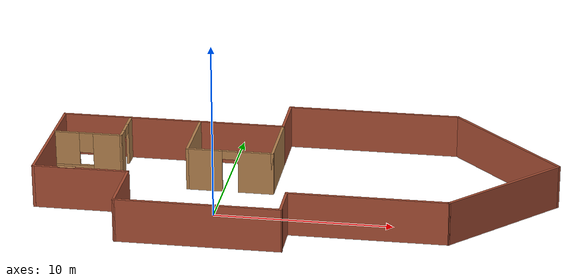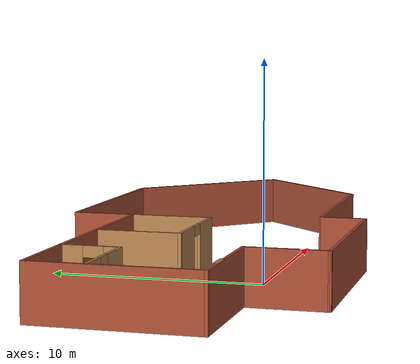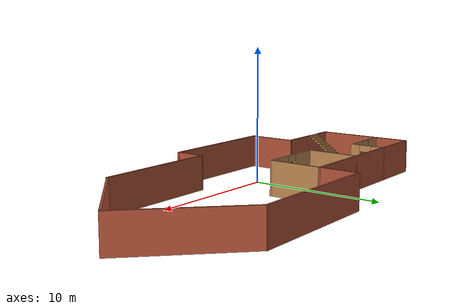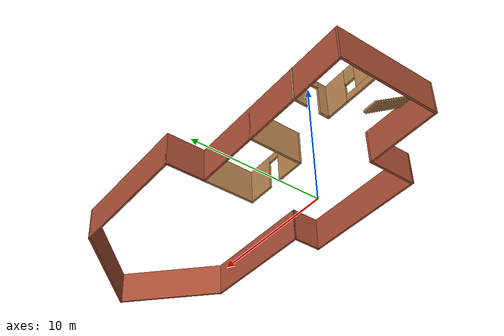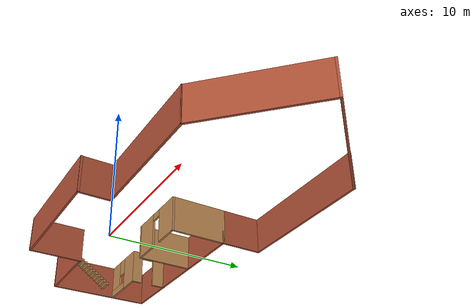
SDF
<?xml version='1.0'?>
<sdf version='1.7'>
  <model name='walls_rooms_stair'>
    <pose>4.33574 3.04766 0 0 -0 0</pose>
    <link name='Stairs_0'>
      <visual name='Stairs_0_Visual_0'>
        <pose>-12.5285 0.00902 0.083333 0 -0 0</pose>
        <geometry>
          <box>
            <size>1 0.233333 0.166667</size>
          </box>
        </geometry>
        <material>
          <script>
            <uri>file://media/materials/scripts/gazebo.material</uri>
            <name>Gazebo/Wood</name>
          </script>
          <ambient>1 1 1 1</ambient>
        </material>
        <meta>
          <layer>0</layer>
        </meta>
      </visual>
      <collision name='Stairs_0_Collision_0'>
        <geometry>
          <box>
            <size>1 0.233333 0.166667</size>
          </box>
        </geometry>
        <pose>-12.5285 0.00902 0.083333 0 -0 0</pose>
      </collision>
      <visual name='Stairs_0_Visual_1'>
        <pose>-12.5285 -0.224313 0.25 0 -0 0</pose>
        <geometry>
          <box>
            <size>1 0.233333 0.166667</size>
          </box>
        </geometry>
        <material>
          <script>
            <uri>file://media/materials/scripts/gazebo.material</uri>
            <name>Gazebo/Wood</name>
          </script>
          <ambient>1 1 1 1</ambient>
        </material>
        <meta>
          <layer>0</layer>
        </meta>
      </visual>
      <collision name='Stairs_0_Collision_1'>
        <geometry>
          <box>
            <size>1 0.233333 0.166667</size>
          </box>
        </geometry>
        <pose>-12.5285 -0.224313 0.25 0 -0 0</pose>
      </collision>
      <visual name='Stairs_0_Visual_2'>
        <pose>-12.5285 -0.457646 0.416667 0 -0 0</pose>
        <geometry>
          <box>
            <size>1 0.233333 0.166667</size>
          </box>
        </geometry>
        <material>
          <script>
            <uri>file://media/materials/scripts/gazebo.material</uri>
            <name>Gazebo/Wood</name>
          </script>
          <ambient>1 1 1 1</ambient>
        </material>
        <meta>
          <layer>0</layer>
        </meta>
      </visual>
      <collision name='Stairs_0_Collision_2'>
        <geometry>
          <box>
            <size>1 0.233333 0.166667</size>
          </box>
        </geometry>
        <pose>-12.5285 -0.457646 0.416667 0 -0 0</pose>
      </collision>
      <visual name='Stairs_0_Visual_3'>
        <pose>-12.5285 -0.69098 0.583333 0 -0 0</pose>
        <geometry>
          <box>
            <size>1 0.233333 0.166667</size>
          </box>
        </geometry>
        <material>
          <script>
            <uri>file://media/materials/scripts/gazebo.material</uri>
            <name>Gazebo/Wood</name>
          </script>
          <ambient>1 1 1 1</ambient>
        </material>
        <meta>
          <layer>0</layer>
        </meta>
      </visual>
      <collision name='Stairs_0_Collision_3'>
        <geometry>
          <box>
            <size>1 0.233333 0.166667</size>
          </box>
        </geometry>
        <pose>-12.5285 -0.69098 0.583333 0 -0 0</pose>
      </collision>
      <visual name='Stairs_0_Visual_4'>
        <pose>-12.5285 -0.924313 0.75 0 -0 0</pose>
        <geometry>
          <box>
            <size>1 0.233333 0.166667</size>
          </box>
        </geometry>
        <material>
          <script>
            <uri>file://media/materials/scripts/gazebo.material</uri>
            <name>Gazebo/Wood</name>
          </script>
          <ambient>1 1 1 1</ambient>
        </material>
        <meta>
          <layer>0</layer>
        </meta>
      </visual>
      <collision name='Stairs_0_Collision_4'>
        <geometry>
          <box>
            <size>1 0.233333 0.166667</size>
          </box>
        </geometry>
        <pose>-12.5285 -0.924313 0.75 0 -0 0</pose>
      </collision>
      <visual name='Stairs_0_Visual_5'>
        <pose>-12.5285 -1.15765 0.916667 0 -0 0</pose>
        <geometry>
          <box>
            <size>1 0.233333 0.166667</size>
          </box>
        </geometry>
        <material>
          <script>
            <uri>file://media/materials/scripts/gazebo.material</uri>
            <name>Gazebo/Wood</name>
          </script>
          <ambient>1 1 1 1</ambient>
        </material>
        <meta>
          <layer>0</layer>
        </meta>
      </visual>
      <collision name='Stairs_0_Collision_5'>
        <geometry>
          <box>
            <size>1 0.233333 0.166667</size>
          </box>
        </geometry>
        <pose>-12.5285 -1.15765 0.916667 0 -0 0</pose>
      </collision>
      <visual name='Stairs_0_Visual_6'>
        <pose>-12.5285 -1.39098 1.08333 0 -0 0</pose>
        <geometry>
          <box>
            <size>1 0.233333 0.166667</size>
          </box>
        </geometry>
        <material>
          <script>
            <uri>file://media/materials/scripts/gazebo.material</uri>
            <name>Gazebo/Wood</name>
          </script>
          <ambient>1 1 1 1</ambient>
        </material>
        <meta>
          <layer>0</layer>
        </meta>
      </visual>
      <collision name='Stairs_0_Collision_6'>
        <geometry>
          <box>
            <size>1 0.233333 0.166667</size>
          </box>
        </geometry>
        <pose>-12.5285 -1.39098 1.08333 0 -0 0</pose>
      </collision>
      <visual name='Stairs_0_Visual_7'>
        <pose>-12.5285 -1.62431 1.25 0 -0 0</pose>
        <geometry>
          <box>
            <size>1 0.233333 0.166667</size>
          </box>
        </geometry>
        <material>
          <script>
            <uri>file://media/materials/scripts/gazebo.material</uri>
            <name>Gazebo/Wood</name>
          </script>
          <ambient>1 1 1 1</ambient>
        </material>
        <meta>
          <layer>0</layer>
        </meta>
      </visual>
      <collision name='Stairs_0_Collision_7'>
        <geometry>
          <box>
            <size>1 0.233333 0.166667</size>
          </box>
        </geometry>
        <pose>-12.5285 -1.62431 1.25 0 -0 0</pose>
      </collision>
      <visual name='Stairs_0_Visual_8'>
        <pose>-12.5285 -1.85765 1.41667 0 -0 0</pose>
        <geometry>
          <box>
            <size>1 0.233333 0.166667</size>
          </box>
        </geometry>
        <material>
          <script>
            <uri>file://media/materials/scripts/gazebo.material</uri>
            <name>Gazebo/Wood</name>
          </script>
          <ambient>1 1 1 1</ambient>
        </material>
        <meta>
          <layer>0</layer>
        </meta>
      </visual>
      <collision name='Stairs_0_Collision_8'>
        <geometry>
          <box>
            <size>1 0.233333 0.166667</size>
          </box>
        </geometry>
        <pose>-12.5285 -1.85765 1.41667 0 -0 0</pose>
      </collision>
      <visual name='Stairs_0_Visual_9'>
        <pose>-12.5285 -2.09098 1.58333 0 -0 0</pose>
        <geometry>
          <box>
            <size>1 0.233333 0.166667</size>
          </box>
        </geometry>
        <material>
          <script>
            <uri>file://media/materials/scripts/gazebo.material</uri>
            <name>Gazebo/Wood</name>
          </script>
          <ambient>1 1 1 1</ambient>
        </material>
        <meta>
          <layer>0</layer>
        </meta>
      </visual>
      <collision name='Stairs_0_Collision_9'>
        <geometry>
          <box>
            <size>1 0.233333 0.166667</size>
          </box>
        </geometry>
        <pose>-12.5285 -2.09098 1.58333 0 -0 0</pose>
      </collision>
      <visual name='Stairs_0_Visual_10'>
        <pose>-12.5285 -2.32431 1.75 0 -0 0</pose>
        <geometry>
          <box>
            <size>1 0.233333 0.166667</size>
          </box>
        </geometry>
        <material>
          <script>
            <uri>file://media/materials/scripts/gazebo.material</uri>
            <name>Gazebo/Wood</name>
          </script>
          <ambient>1 1 1 1</ambient>
        </material>
        <meta>
          <layer>0</layer>
        </meta>
      </visual>
      <collision name='Stairs_0_Collision_10'>
        <geometry>
          <box>
            <size>1 0.233333 0.166667</size>
          </box>
        </geometry>
        <pose>-12.5285 -2.32431 1.75 0 -0 0</pose>
      </collision>
      <visual name='Stairs_0_Visual_11'>
        <pose>-12.5285 -2.55765 1.91667 0 -0 0</pose>
        <geometry>
          <box>
            <size>1 0.233333 0.166667</size>
          </box>
        </geometry>
        <material>
          <script>
            <uri>file://media/materials/scripts/gazebo.material</uri>
            <name>Gazebo/Wood</name>
          </script>
          <ambient>1 1 1 1</ambient>
        </material>
        <meta>
          <layer>0</layer>
        </meta>
      </visual>
      <collision name='Stairs_0_Collision_11'>
        <geometry>
          <box>
            <size>1 0.233333 0.166667</size>
          </box>
        </geometry>
        <pose>-12.5285 -2.55765 1.91667 0 -0 0</pose>
      </collision>
      <visual name='Stairs_0_Visual_12'>
        <pose>-12.5285 -2.79098 2.08333 0 -0 0</pose>
        <geometry>
          <box>
            <size>1 0.233333 0.166667</size>
          </box>
        </geometry>
        <material>
          <script>
            <uri>file://media/materials/scripts/gazebo.material</uri>
            <name>Gazebo/Wood</name>
          </script>
          <ambient>1 1 1 1</ambient>
        </material>
        <meta>
          <layer>0</layer>
        </meta>
      </visual>
      <collision name='Stairs_0_Collision_12'>
        <geometry>
          <box>
            <size>1 0.233333 0.166667</size>
          </box>
        </geometry>
        <pose>-12.5285 -2.79098 2.08333 0 -0 0</pose>
      </collision>
      <visual name='Stairs_0_Visual_13'>
        <pose>-12.5285 -3.02431 2.25 0 -0 0</pose>
        <geometry>
          <box>
            <size>1 0.233333 0.166667</size>
          </box>
        </geometry>
        <material>
          <script>
            <uri>file://media/materials/scripts/gazebo.material</uri>
            <name>Gazebo/Wood</name>
          </script>
          <ambient>1 1 1 1</ambient>
        </material>
        <meta>
          <layer>0</layer>
        </meta>
      </visual>
      <collision name='Stairs_0_Collision_13'>
        <geometry>
          <box>
            <size>1 0.233333 0.166667</size>
          </box>
        </geometry>
        <pose>-12.5285 -3.02431 2.25 0 -0 0</pose>
      </collision>
      <visual name='Stairs_0_Visual_14'>
        <pose>-12.5285 -3.25765 2.41667 0 -0 0</pose>
        <geometry>
          <box>
            <size>1 0.233333 0.166667</size>
          </box>
        </geometry>
        <material>
          <script>
            <uri>file://media/materials/scripts/gazebo.material</uri>
            <name>Gazebo/Wood</name>
          </script>
          <ambient>1 1 1 1</ambient>
        </material>
        <meta>
          <layer>0</layer>
        </meta>
      </visual>
      <collision name='Stairs_0_Collision_14'>
        <geometry>
          <box>
            <size>1 0.233333 0.166667</size>
          </box>
        </geometry>
        <pose>-12.5285 -3.25765 2.41667 0 -0 0</pose>
      </collision>
    </link>
    <link name='Wall_10'>
      <collision name='Wall_10_Collision'>
        <geometry>
          <box>
            <size>7.5 0.15 2.5</size>
          </box>
        </geometry>
        <pose>0 0 1.25 0 -0 0</pose>
      </collision>
      <visual name='Wall_10_Visual'>
        <pose>0 0 1.25 0 -0 0</pose>
        <geometry>
          <box>
            <size>7.5 0.15 2.5</size>
          </box>
        </geometry>
        <material>
          <script>
            <uri>file://media/materials/scripts/gazebo.material</uri>
            <name>Gazebo/Bricks</name>
          </script>
          <ambient>1 1 1 1</ambient>
        </material>
        <meta>
          <layer>0</layer>
        </meta>
      </visual>
      <pose>-14.4061 0.359592 0 0 -0 1.5708</pose>
    </link>
    <link name='Wall_11'>
      <collision name='Wall_11_Collision'>
        <geometry>
          <box>
            <size>13 0.15 2.5</size>
          </box>
        </geometry>
        <pose>0 0 1.25 0 -0 0</pose>
      </collision>
      <visual name='Wall_11_Visual'>
        <pose>0 0 1.25 0 -0 0</pose>
        <geometry>
          <box>
            <size>13 0.15 2.5</size>
          </box>
        </geometry>
        <material>
          <script>
            <uri>file://media/materials/scripts/gazebo.material</uri>
            <name>Gazebo/Bricks</name>
          </script>
          <ambient>1 1 1 1</ambient>
        </material>
        <meta>
          <layer>0</layer>
        </meta>
      </visual>
      <pose>-7.98109 4.03459 0 0 -0 0</pose>
    </link>
    <link name='Wall_12'>
      <collision name='Wall_12_Collision'>
        <geometry>
          <box>
            <size>3 0.15 2.5</size>
          </box>
        </geometry>
        <pose>0 0 1.25 0 -0 0</pose>
      </collision>
      <visual name='Wall_12_Visual'>
        <pose>0 0 1.25 0 -0 0</pose>
        <geometry>
          <box>
            <size>3 0.15 2.5</size>
          </box>
        </geometry>
        <material>
          <script>
            <uri>file://media/materials/scripts/gazebo.material</uri>
            <name>Gazebo/Bricks</name>
          </script>
          <ambient>1 1 1 1</ambient>
        </material>
        <meta>
          <layer>0</layer>
        </meta>
      </visual>
      <pose>-1.55609 5.45959 0 0 -0 1.5708</pose>
    </link>
    <link name='Wall_13'>
      <collision name='Wall_13_Collision'>
        <geometry>
          <box>
            <size>10 0.15 2.5</size>
          </box>
        </geometry>
        <pose>0 0 1.25 0 -0 0</pose>
      </collision>
      <visual name='Wall_13_Visual'>
        <pose>0 0 1.25 0 -0 0</pose>
        <geometry>
          <box>
            <size>10 0.15 2.5</size>
          </box>
        </geometry>
        <material>
          <script>
            <uri>file://media/materials/scripts/gazebo.material</uri>
            <name>Gazebo/Bricks</name>
          </script>
          <ambient>1 1 1 1</ambient>
        </material>
        <meta>
          <layer>0</layer>
        </meta>
      </visual>
      <pose>3.36891 6.88459 0 0 -0 0</pose>
    </link>
    <link name='Wall_14'>
      <collision name='Wall_14_Collision'>
        <geometry>
          <box>
            <size>8.75 0.15 2.5</size>
          </box>
        </geometry>
        <pose>0 0 1.25 0 -0 0</pose>
      </collision>
      <visual name='Wall_14_Visual'>
        <pose>0 0 1.25 0 -0 0</pose>
        <geometry>
          <box>
            <size>8.75 0.15 2.5</size>
          </box>
        </geometry>
        <material>
          <script>
            <uri>file://media/materials/scripts/gazebo.material</uri>
            <name>Gazebo/Bricks</name>
          </script>
          <ambient>1 1 1 1</ambient>
        </material>
        <meta>
          <layer>0</layer>
        </meta>
      </visual>
      <pose>11.3345 3.84403 0 0 -0 -0.785398</pose>
    </link>
    <link name='Wall_15'>
      <collision name='Wall_15_Collision'>
        <geometry>
          <box>
            <size>8 0.15 2.5</size>
          </box>
        </geometry>
        <pose>0 0 1.25 0 -0 0</pose>
      </collision>
      <visual name='Wall_15_Visual'>
        <pose>0 0 1.25 0 -0 0</pose>
        <geometry>
          <box>
            <size>8 0.15 2.5</size>
          </box>
        </geometry>
        <material>
          <script>
            <uri>file://media/materials/scripts/gazebo.material</uri>
            <name>Gazebo/Bricks</name>
          </script>
          <ambient>1 1 1 1</ambient>
        </material>
        <meta>
          <layer>0</layer>
        </meta>
      </visual>
      <pose>11.5996 -1.97192 0 0 -0 -2.35619</pose>
    </link>
    <link name='Wall_16'>
      <collision name='Wall_16_Collision'>
        <geometry>
          <box>
            <size>8.961 0.15 2.5</size>
          </box>
        </geometry>
        <pose>0 0 1.25 0 -0 0</pose>
      </collision>
      <visual name='Wall_16_Visual'>
        <pose>0 0 1.25 0 -0 0</pose>
        <geometry>
          <box>
            <size>8.961 0.15 2.5</size>
          </box>
        </geometry>
        <material>
          <script>
            <uri>file://media/materials/scripts/gazebo.material</uri>
            <name>Gazebo/Bricks</name>
          </script>
          <ambient>1 1 1 1</ambient>
        </material>
        <meta>
          <layer>0</layer>
        </meta>
      </visual>
      <pose>4.41878 -4.76607 0 0 -0 -3.13734</pose>
    </link>
    <link name='Wall_17'>
      <collision name='Wall_17_Collision'>
        <geometry>
          <box>
            <size>2.25 0.15 2.5</size>
          </box>
        </geometry>
        <pose>0 0 1.25 0 -0 0</pose>
      </collision>
      <visual name='Wall_17_Visual'>
        <pose>0 0 1.25 0 -0 0</pose>
        <geometry>
          <box>
            <size>2.25 0.15 2.5</size>
          </box>
        </geometry>
        <material>
          <script>
            <uri>file://media/materials/scripts/gazebo.material</uri>
            <name>Gazebo/Bricks</name>
          </script>
          <ambient>1 1 1 1</ambient>
        </material>
        <meta>
          <layer>0</layer>
        </meta>
      </visual>
      <pose>0.013317 -5.83482 0 0 -0 -1.5708</pose>
    </link>
    <link name='Wall_19'>
      <collision name='Wall_19_Collision'>
        <geometry>
          <box>
            <size>4 0.15 2.5</size>
          </box>
        </geometry>
        <pose>0 0 1.25 0 -0 0</pose>
      </collision>
      <visual name='Wall_19_Visual'>
        <pose>0 0 1.25 0 -0 0</pose>
        <geometry>
          <box>
            <size>4 0.15 2.5</size>
          </box>
        </geometry>
        <material>
          <script>
            <uri>file://media/materials/scripts/gazebo.material</uri>
            <name>Gazebo/Wood</name>
          </script>
          <ambient>1 1 1 1</ambient>
        </material>
        <meta>
          <layer>0</layer>
        </meta>
      </visual>
      <pose>-1.55609 2.10959 0 0 -0 -1.5708</pose>
    </link>
    <link name='Wall_20'>
      <pose>-3.98109 0.184592 0 0 -0 3.14159</pose>
      <visual name='Wall_20_Visual_0'>
        <pose>-1.48551 0 1.25 0 -0 0</pose>
        <geometry>
          <box>
            <size>2.02898 0.15 2.5</size>
          </box>
        </geometry>
        <material>
          <script>
            <uri>file://media/materials/scripts/gazebo.material</uri>
            <name>Gazebo/Wood</name>
          </script>
          <ambient>1 1 1 1</ambient>
        </material>
        <meta>
          <layer>0</layer>
        </meta>
      </visual>
      <collision name='Wall_20_Collision_0'>
        <geometry>
          <box>
            <size>2.02898 0.15 2.5</size>
          </box>
        </geometry>
        <pose>-1.48551 0 1.25 0 -0 0</pose>
      </collision>
      <visual name='Wall_20_Visual_1'>
        <pose>1.46449 0 1.25 0 -0 0</pose>
        <geometry>
          <box>
            <size>2.07102 0.15 2.5</size>
          </box>
        </geometry>
        <material>
          <script>
            <uri>file://media/materials/scripts/gazebo.material</uri>
            <name>Gazebo/Wood</name>
          </script>
          <ambient>1 1 1 1</ambient>
        </material>
        <meta>
          <layer>0</layer>
        </meta>
      </visual>
      <collision name='Wall_20_Collision_1'>
        <geometry>
          <box>
            <size>2.07102 0.15 2.5</size>
          </box>
        </geometry>
        <pose>1.46449 0 1.25 0 -0 0</pose>
      </collision>
      <visual name='Wall_20_Visual_2'>
        <pose>-0.021019 0 2.25 0 -0 0</pose>
        <geometry>
          <box>
            <size>0.9 0.15 0.5</size>
          </box>
        </geometry>
        <material>
          <script>
            <uri>file://media/materials/scripts/gazebo.material</uri>
            <name>Gazebo/Wood</name>
          </script>
          <ambient>1 1 1 1</ambient>
        </material>
        <meta>
          <layer>0</layer>
        </meta>
      </visual>
      <collision name='Wall_20_Collision_2'>
        <geometry>
          <box>
            <size>0.9 0.15 0.5</size>
          </box>
        </geometry>
        <pose>-0.021019 0 2.25 0 -0 0</pose>
      </collision>
    </link>
    <link name='Wall_21'>
      <collision name='Wall_21_Collision'>
        <geometry>
          <box>
            <size>4 0.15 2.5</size>
          </box>
        </geometry>
        <pose>0 0 1.25 0 -0 0</pose>
      </collision>
      <visual name='Wall_21_Visual'>
        <pose>0 0 1.25 0 -0 0</pose>
        <geometry>
          <box>
            <size>4 0.15 2.5</size>
          </box>
        </geometry>
        <material>
          <script>
            <uri>file://media/materials/scripts/gazebo.material</uri>
            <name>Gazebo/Wood</name>
          </script>
          <ambient>1 1 1 1</ambient>
        </material>
        <meta>
          <layer>0</layer>
        </meta>
      </visual>
      <pose>-6.40609 2.10959 0 0 -0 1.5708</pose>
    </link>
    <link name='Wall_23'>
      <pose>-10.497 2.75306 0 0 -0 1.5708</pose>
      <visual name='Wall_23_Visual_0'>
        <pose>-0.989263 0 1.25 0 -0 0</pose>
        <geometry>
          <box>
            <size>0.771474 0.15 2.5</size>
          </box>
        </geometry>
        <material>
          <script>
            <uri>file://media/materials/scripts/gazebo.material</uri>
            <name>Gazebo/Wood</name>
          </script>
          <ambient>1 1 1 1</ambient>
        </material>
        <meta>
          <layer>0</layer>
        </meta>
      </visual>
      <collision name='Wall_23_Collision_0'>
        <geometry>
          <box>
            <size>0.771474 0.15 2.5</size>
          </box>
        </geometry>
        <pose>-0.989263 0 1.25 0 -0 0</pose>
      </collision>
      <visual name='Wall_23_Visual_1'>
        <pose>0.835737 0 1.25 0 -0 0</pose>
        <geometry>
          <box>
            <size>1.07853 0.15 2.5</size>
          </box>
        </geometry>
        <material>
          <script>
            <uri>file://media/materials/scripts/gazebo.material</uri>
            <name>Gazebo/Wood</name>
          </script>
          <ambient>1 1 1 1</ambient>
        </material>
        <meta>
          <layer>0</layer>
        </meta>
      </visual>
      <collision name='Wall_23_Collision_1'>
        <geometry>
          <box>
            <size>1.07853 0.15 2.5</size>
          </box>
        </geometry>
        <pose>0.835737 0 1.25 0 -0 0</pose>
      </collision>
      <visual name='Wall_23_Visual_2'>
        <pose>-0.153526 0 2.25 0 -0 0</pose>
        <geometry>
          <box>
            <size>0.9 0.15 0.5</size>
          </box>
        </geometry>
        <material>
          <script>
            <uri>file://media/materials/scripts/gazebo.material</uri>
            <name>Gazebo/Wood</name>
          </script>
          <ambient>1 1 1 1</ambient>
        </material>
        <meta>
          <layer>0</layer>
        </meta>
      </visual>
      <collision name='Wall_23_Collision_2'>
        <geometry>
          <box>
            <size>0.9 0.15 0.5</size>
          </box>
        </geometry>
        <pose>-0.153526 0 2.25 0 -0 0</pose>
      </collision>
    </link>
    <link name='Wall_26'>
      <pose>-12.422 1.45306 0 0 -0 3.14159</pose>
      <visual name='Wall_26_Visual_0'>
        <pose>-1.14676 0 1.25 0 -0 0</pose>
        <geometry>
          <box>
            <size>1.70647 0.15 2.5</size>
          </box>
        </geometry>
        <material>
          <script>
            <uri>file://media/materials/scripts/gazebo.material</uri>
            <name>Gazebo/Wood</name>
          </script>
          <ambient>1 1 1 1</ambient>
        </material>
        <meta>
          <layer>0</layer>
        </meta>
      </visual>
      <collision name='Wall_26_Collision_0'>
        <geometry>
          <box>
            <size>1.70647 0.15 2.5</size>
          </box>
        </geometry>
        <pose>-1.14676 0 1.25 0 -0 0</pose>
      </collision>
      <visual name='Wall_26_Visual_1'>
        <pose>0.853236 0 0.25 0 -0 0</pose>
        <geometry>
          <box>
            <size>2.29353 0.15 0.5</size>
          </box>
        </geometry>
        <material>
          <script>
            <uri>file://media/materials/scripts/gazebo.material</uri>
            <name>Gazebo/Wood</name>
          </script>
          <ambient>1 1 1 1</ambient>
        </material>
        <meta>
          <layer>0</layer>
        </meta>
      </visual>
      <collision name='Wall_26_Collision_1'>
        <geometry>
          <box>
            <size>2.29353 0.15 0.5</size>
          </box>
        </geometry>
        <pose>0.853236 0 0.25 0 -0 0</pose>
      </collision>
      <visual name='Wall_26_Visual_2'>
        <pose>1.25324 0 1.5 0 -0 0</pose>
        <geometry>
          <box>
            <size>1.49353 0.15 2</size>
          </box>
        </geometry>
        <material>
          <script>
            <uri>file://media/materials/scripts/gazebo.material</uri>
            <name>Gazebo/Wood</name>
          </script>
          <ambient>1 1 1 1</ambient>
        </material>
        <meta>
          <layer>0</layer>
        </meta>
      </visual>
      <collision name='Wall_26_Collision_2'>
        <geometry>
          <box>
            <size>1.49353 0.15 2</size>
          </box>
        </geometry>
        <pose>1.25324 0 1.5 0 -0 0</pose>
      </collision>
      <visual name='Wall_26_Visual_3'>
        <pose>0.106471 0 1.9 0 -0 0</pose>
        <geometry>
          <box>
            <size>0.8 0.15 1.2</size>
          </box>
        </geometry>
        <material>
          <script>
            <uri>file://media/materials/scripts/gazebo.material</uri>
            <name>Gazebo/Wood</name>
          </script>
          <ambient>1 1 1 1</ambient>
        </material>
        <meta>
          <layer>0</layer>
        </meta>
      </visual>
      <collision name='Wall_26_Collision_3'>
        <geometry>
          <box>
            <size>0.8 0.15 1.2</size>
          </box>
        </geometry>
        <pose>0.106471 0 1.9 0 -0 0</pose>
      </collision>
    </link>
    <link name='Wall_7'>
      <collision name='Wall_7_Collision'>
        <geometry>
          <box>
            <size>9.25005 0.15 2.5</size>
          </box>
        </geometry>
        <pose>0 0 1.25 0 -0 0</pose>
      </collision>
      <visual name='Wall_7_Visual'>
        <pose>0 0 1.25 0 -0 0</pose>
        <geometry>
          <box>
            <size>9.25005 0.15 2.5</size>
          </box>
        </geometry>
        <material>
          <script>
            <uri>file://media/materials/scripts/gazebo.material</uri>
            <name>Gazebo/Bricks</name>
          </script>
          <ambient>1 1 1 1</ambient>
        </material>
        <meta>
          <layer>0</layer>
        </meta>
      </visual>
      <pose>-4.50609 -6.90011 0 0 -0 -3.13823</pose>
    </link>
    <link name='Wall_8'>
      <collision name='Wall_8_Collision'>
        <geometry>
          <box>
            <size>3.75 0.15 2.5</size>
          </box>
        </geometry>
        <pose>0 0 1.25 0 -0 0</pose>
      </collision>
      <visual name='Wall_8_Visual'>
        <pose>0 0 1.25 0 -0 0</pose>
        <geometry>
          <box>
            <size>3.75 0.15 2.5</size>
          </box>
        </geometry>
        <material>
          <script>
            <uri>file://media/materials/scripts/gazebo.material</uri>
            <name>Gazebo/Bricks</name>
          </script>
          <ambient>1 1 1 1</ambient>
        </material>
        <meta>
          <layer>0</layer>
        </meta>
      </visual>
      <pose>-9.05609 -5.11541 0 0 -0 1.5708</pose>
    </link>
    <link name='Wall_9'>
      <collision name='Wall_9_Collision'>
        <geometry>
          <box>
            <size>5.5 0.15 2.5</size>
          </box>
        </geometry>
        <pose>0 0 1.25 0 -0 0</pose>
      </collision>
      <visual name='Wall_9_Visual'>
        <pose>0 0 1.25 0 -0 0</pose>
        <geometry>
          <box>
            <size>5.5 0.15 2.5</size>
          </box>
        </geometry>
        <material>
          <script>
            <uri>file://media/materials/scripts/gazebo.material</uri>
            <name>Gazebo/Bricks</name>
          </script>
          <ambient>1 1 1 1</ambient>
        </material>
        <meta>
          <layer>0</layer>
        </meta>
      </visual>
      <pose>-11.7311 -3.31541 0 0 -0 3.14159</pose>
    </link>
    <static>1</static>
  </model>
</sdf>
